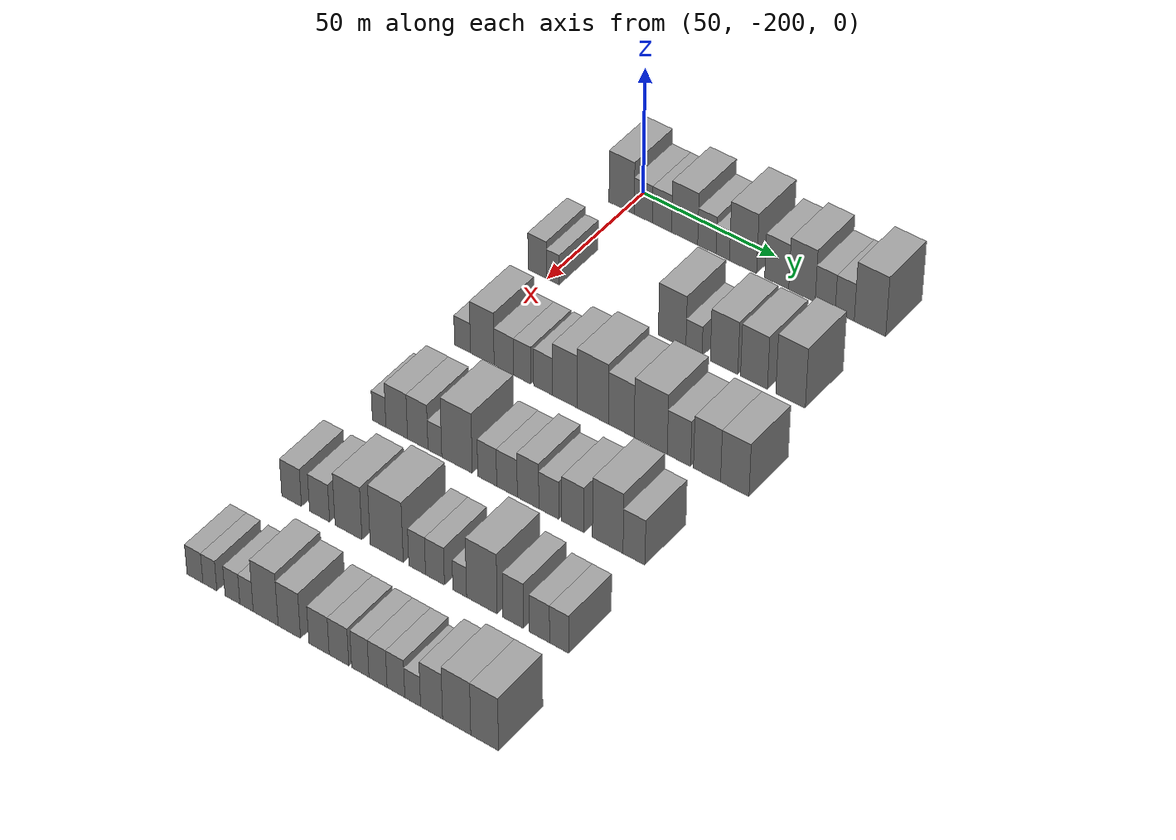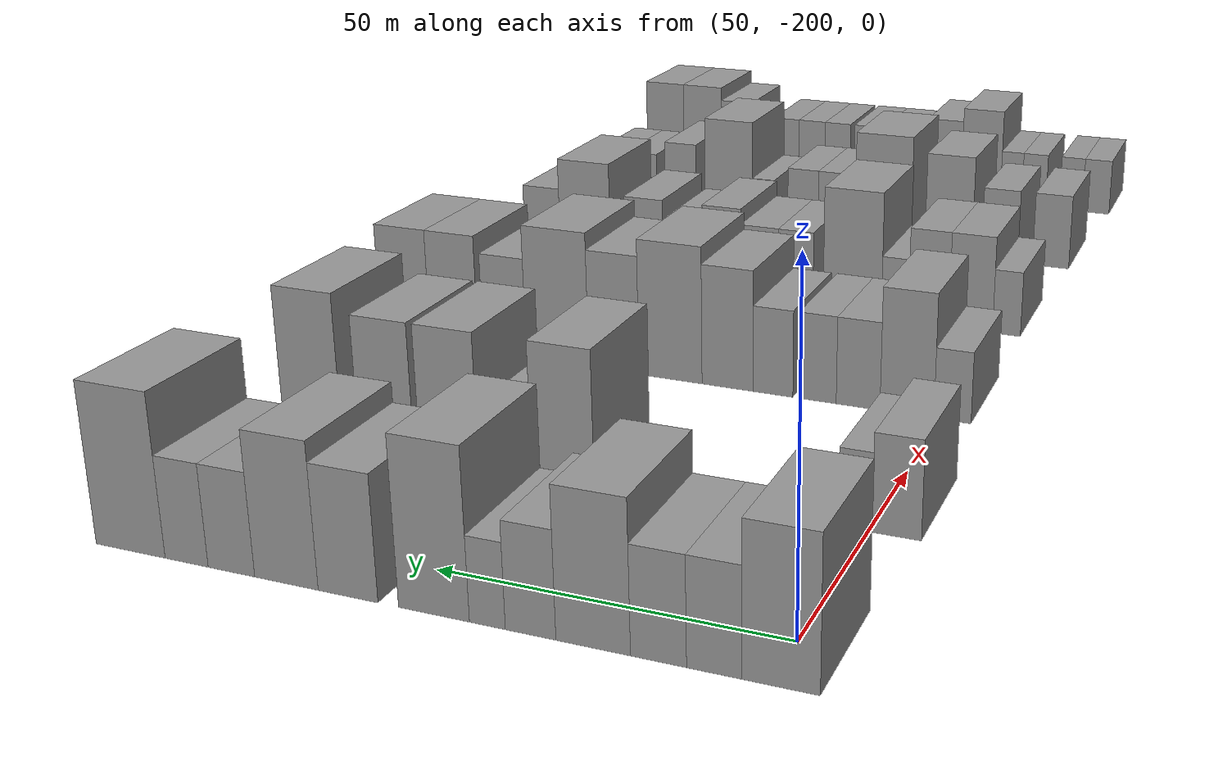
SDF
<sdf version="1.6">
 <world name="default">
  <model name="building_50">
   <static>1</static>
   <pose>50.0000 -201.2752 0 0.000000 0.000000 0.000000</pose>
   <link name="link">
    <pose>0 0 10.50 0 0 0</pose>
    <collision name="collision"><geometry><box><size>20.0000 9.6597 21.0000</size></box></geometry></collision>
    <visual name="visual">
     <cast_shadows>0</cast_shadows>
     <geometry><box><size>20.0000 9.6597 21.0000</size></box></geometry>
     <material>
      <script>
       <uri>model://grey_wall/materials/scripts</uri>
       <uri>model://grey_wall/materials/textures</uri>
       <name>vrc/grey_wall</name>
      </script>
     </material>
    </visual>
   </link>
  </model>
  <model name="building_51">
   <static>1</static>
   <pose>50.0000 -192.9699 0 0.000000 0.000000 0.000000</pose>
   <link name="link">
    <pose>0 0 7.50 0 0 0</pose>
    <collision name="collision"><geometry><box><size>20.0000 6.9508 15.0000</size></box></geometry></collision>
    <visual name="visual">
     <cast_shadows>0</cast_shadows>
     <geometry><box><size>20.0000 6.9508 15.0000</size></box></geometry>
     <material>
      <script>
       <uri>model://grey_wall/materials/scripts</uri>
       <uri>model://grey_wall/materials/textures</uri>
       <name>vrc/grey_wall</name>
      </script>
     </material>
    </visual>
   </link>
  </model>
  <model name="building_52">
   <static>1</static>
   <pose>50.0000 -185.8739 0 0.000000 0.000000 0.000000</pose>
   <link name="link">
    <pose>0 0 7.50 0 0 0</pose>
    <collision name="collision"><geometry><box><size>20.0000 7.2413 15.0000</size></box></geometry></collision>
    <visual name="visual">
     <cast_shadows>0</cast_shadows>
     <geometry><box><size>20.0000 7.2413 15.0000</size></box></geometry>
     <material>
      <script>
       <uri>model://grey_wall/materials/scripts</uri>
       <uri>model://grey_wall/materials/textures</uri>
       <name>vrc/grey_wall</name>
      </script>
     </material>
    </visual>
   </link>
  </model>
  <model name="building_53">
   <static>1</static>
   <pose>50.0000 -177.2964 0 0.000000 0.000000 0.000000</pose>
   <link name="link">
    <pose>0 0 10.50 0 0 0</pose>
    <collision name="collision"><geometry><box><size>20.0000 9.9137 21.0000</size></box></geometry></collision>
    <visual name="visual">
     <cast_shadows>0</cast_shadows>
     <geometry><box><size>20.0000 9.9137 21.0000</size></box></geometry>
     <material>
      <script>
       <uri>model://grey_wall/materials/scripts</uri>
       <uri>model://grey_wall/materials/textures</uri>
       <name>vrc/grey_wall</name>
      </script>
     </material>
    </visual>
   </link>
  </model>
  <model name="building_54">
   <static>1</static>
   <pose>50.0000 -168.8878 0 0.000000 0.000000 0.000000</pose>
   <link name="link">
    <pose>0 0 7.50 0 0 0</pose>
    <collision name="collision"><geometry><box><size>20.0000 6.9035 15.0000</size></box></geometry></collision>
    <visual name="visual">
     <cast_shadows>0</cast_shadows>
     <geometry><box><size>20.0000 6.9035 15.0000</size></box></geometry>
     <material>
      <script>
       <uri>model://grey_wall/materials/scripts</uri>
       <uri>model://grey_wall/materials/textures</uri>
       <name>vrc/grey_wall</name>
      </script>
     </material>
    </visual>
   </link>
  </model>
  <model name="building_55">
   <static>1</static>
   <pose>50.0000 -162.9367 0 0.000000 0.000000 0.000000</pose>
   <link name="link">
    <pose>0 0 6.00 0 0 0</pose>
    <collision name="collision"><geometry><box><size>20.0000 4.9988 12.0000</size></box></geometry></collision>
    <visual name="visual">
     <cast_shadows>0</cast_shadows>
     <geometry><box><size>20.0000 4.9988 12.0000</size></box></geometry>
     <material>
      <script>
       <uri>model://grey_wall/materials/scripts</uri>
       <uri>model://grey_wall/materials/textures</uri>
       <name>vrc/grey_wall</name>
      </script>
     </material>
    </visual>
   </link>
  </model>
  <model name="building_56">
   <static>1</static>
   <pose>50.0000 -155.3822 0 0.000000 0.000000 0.000000</pose>
   <link name="link">
    <pose>0 0 12.00 0 0 0</pose>
    <collision name="collision"><geometry><box><size>20.0000 10.1102 24.0000</size></box></geometry></collision>
    <visual name="visual">
     <cast_shadows>0</cast_shadows>
     <geometry><box><size>20.0000 10.1102 24.0000</size></box></geometry>
     <material>
      <script>
       <uri>model://grey_wall/materials/scripts</uri>
       <uri>model://grey_wall/materials/textures</uri>
       <name>vrc/grey_wall</name>
      </script>
     </material>
    </visual>
   </link>
  </model>
  <model name="building_57">
   <static>1</static>
   <pose>50.0000 -142.8923 0 0.000000 0.000000 0.000000</pose>
   <link name="link">
    <pose>0 0 9.00 0 0 0</pose>
    <collision name="collision"><geometry><box><size>20.0000 8.8695 18.0000</size></box></geometry></collision>
    <visual name="visual">
     <cast_shadows>0</cast_shadows>
     <geometry><box><size>20.0000 8.8695 18.0000</size></box></geometry>
     <material>
      <script>
       <uri>model://grey_wall/materials/scripts</uri>
       <uri>model://grey_wall/materials/textures</uri>
       <name>vrc/grey_wall</name>
      </script>
     </material>
    </visual>
   </link>
  </model>
  <model name="building_58">
   <static>1</static>
   <pose>50.0000 -133.6059 0 0.000000 0.000000 0.000000</pose>
   <link name="link">
    <pose>0 0 10.50 0 0 0</pose>
    <collision name="collision"><geometry><box><size>20.0000 9.7034 21.0000</size></box></geometry></collision>
    <visual name="visual">
     <cast_shadows>0</cast_shadows>
     <geometry><box><size>20.0000 9.7034 21.0000</size></box></geometry>
     <material>
      <script>
       <uri>model://grey_wall/materials/scripts</uri>
       <uri>model://grey_wall/materials/textures</uri>
       <name>vrc/grey_wall</name>
      </script>
     </material>
    </visual>
   </link>
  </model>
  <model name="building_59">
   <static>1</static>
   <pose>50.0000 -125.1052 0 0.000000 0.000000 0.000000</pose>
   <link name="link">
    <pose>0 0 7.50 0 0 0</pose>
    <collision name="collision"><geometry><box><size>20.0000 7.2979 15.0000</size></box></geometry></collision>
    <visual name="visual">
     <cast_shadows>0</cast_shadows>
     <geometry><box><size>20.0000 7.2979 15.0000</size></box></geometry>
     <material>
      <script>
       <uri>model://grey_wall/materials/scripts</uri>
       <uri>model://grey_wall/materials/textures</uri>
       <name>vrc/grey_wall</name>
      </script>
     </material>
    </visual>
   </link>
  </model>
  <model name="building_60">
   <static>1</static>
   <pose>50.0000 -118.0099 0 0.000000 0.000000 0.000000</pose>
   <link name="link">
    <pose>0 0 7.50 0 0 0</pose>
    <collision name="collision"><geometry><box><size>20.0000 6.8928 15.0000</size></box></geometry></collision>
    <visual name="visual">
     <cast_shadows>0</cast_shadows>
     <geometry><box><size>20.0000 6.8928 15.0000</size></box></geometry>
     <material>
      <script>
       <uri>model://grey_wall/materials/scripts</uri>
       <uri>model://grey_wall/materials/textures</uri>
       <name>vrc/grey_wall</name>
      </script>
     </material>
    </visual>
   </link>
  </model>
  <model name="building_61">
   <static>1</static>
   <pose>50.0000 -108.9009 0 0.000000 0.000000 0.000000</pose>
   <link name="link">
    <pose>0 0 12.00 0 0 0</pose>
    <collision name="collision"><geometry><box><size>20.0000 11.3253 24.0000</size></box></geometry></collision>
    <visual name="visual">
     <cast_shadows>0</cast_shadows>
     <geometry><box><size>20.0000 11.3253 24.0000</size></box></geometry>
     <material>
      <script>
       <uri>model://grey_wall/materials/scripts</uri>
       <uri>model://grey_wall/materials/textures</uri>
       <name>vrc/grey_wall</name>
      </script>
     </material>
    </visual>
   </link>
  </model>
  <model name="building_176">
   <static>1</static>
   <pose>90.0000 -203.9301 0 0.000000 0.000000 0.000000</pose>
   <link name="link">
    <pose>0 0 7.50 0 0 0</pose>
    <collision name="collision"><geometry><box><size>20.0000 6.9840 15.0000</size></box></geometry></collision>
    <visual name="visual">
     <cast_shadows>0</cast_shadows>
     <geometry><box><size>20.0000 6.9840 15.0000</size></box></geometry>
     <material>
      <script>
       <uri>model://grey_wall/materials/scripts</uri>
       <uri>model://grey_wall/materials/textures</uri>
       <name>vrc/grey_wall</name>
      </script>
     </material>
    </visual>
   </link>
  </model>
  <model name="building_177">
   <static>1</static>
   <pose>90.0000 -198.0077 0 0.000000 0.000000 0.000000</pose>
   <link name="link">
    <pose>0 0 6.00 0 0 0</pose>
    <collision name="collision"><geometry><box><size>20.0000 4.8608 12.0000</size></box></geometry></collision>
    <visual name="visual">
     <cast_shadows>0</cast_shadows>
     <geometry><box><size>20.0000 4.8608 12.0000</size></box></geometry>
     <material>
      <script>
       <uri>model://grey_wall/materials/scripts</uri>
       <uri>model://grey_wall/materials/textures</uri>
       <name>vrc/grey_wall</name>
      </script>
     </material>
    </visual>
   </link>
  </model>
  <model name="building_178">
   <static>1</static>
   <pose>90.0000 -153.4004 0 0.000000 0.000000 0.000000</pose>
   <link name="link">
    <pose>0 0 10.50 0 0 0</pose>
    <collision name="collision"><geometry><box><size>20.0000 10.1179 21.0000</size></box></geometry></collision>
    <visual name="visual">
     <cast_shadows>0</cast_shadows>
     <geometry><box><size>20.0000 10.1179 21.0000</size></box></geometry>
     <material>
      <script>
       <uri>model://grey_wall/materials/scripts</uri>
       <uri>model://grey_wall/materials/textures</uri>
       <name>vrc/grey_wall</name>
      </script>
     </material>
    </visual>
   </link>
  </model>
  <model name="building_179">
   <static>1</static>
   <pose>90.0000 -145.3824 0 0.000000 0.000000 0.000000</pose>
   <link name="link">
    <pose>0 0 6.00 0 0 0</pose>
    <collision name="collision"><geometry><box><size>20.0000 5.9182 12.0000</size></box></geometry></collision>
    <visual name="visual">
     <cast_shadows>0</cast_shadows>
     <geometry><box><size>20.0000 5.9182 12.0000</size></box></geometry>
     <material>
      <script>
       <uri>model://grey_wall/materials/scripts</uri>
       <uri>model://grey_wall/materials/textures</uri>
       <name>vrc/grey_wall</name>
      </script>
     </material>
    </visual>
   </link>
  </model>
  <model name="building_180">
   <static>1</static>
   <pose>90.0000 -134.4233 0 0.000000 0.000000 0.000000</pose>
   <link name="link">
    <pose>0 0 10.50 0 0 0</pose>
    <collision name="collision"><geometry><box><size>20.0000 10.0000 21.0000</size></box></geometry></collision>
    <visual name="visual">
     <cast_shadows>0</cast_shadows>
     <geometry><box><size>20.0000 10.0000 21.0000</size></box></geometry>
     <material>
      <script>
       <uri>model://grey_wall/materials/scripts</uri>
       <uri>model://grey_wall/materials/textures</uri>
       <name>vrc/grey_wall</name>
      </script>
     </material>
    </visual>
   </link>
  </model>
  <model name="building_181">
   <static>1</static>
   <pose>90.0000 -123.5809 0 0.000000 0.000000 0.000000</pose>
   <link name="link">
    <pose>0 0 10.50 0 0 0</pose>
    <collision name="collision"><geometry><box><size>20.0000 9.6848 21.0000</size></box></geometry></collision>
    <visual name="visual">
     <cast_shadows>0</cast_shadows>
     <geometry><box><size>20.0000 9.6848 21.0000</size></box></geometry>
     <material>
      <script>
       <uri>model://grey_wall/materials/scripts</uri>
       <uri>model://grey_wall/materials/textures</uri>
       <name>vrc/grey_wall</name>
      </script>
     </material>
    </visual>
   </link>
  </model>
  <model name="building_182">
   <static>1</static>
   <pose>90.0000 -110.4600 0 0.000000 0.000000 0.000000</pose>
   <link name="link">
    <pose>0 0 12.00 0 0 0</pose>
    <collision name="collision"><geometry><box><size>20.0000 10.5569 24.0000</size></box></geometry></collision>
    <visual name="visual">
     <cast_shadows>0</cast_shadows>
     <geometry><box><size>20.0000 10.5569 24.0000</size></box></geometry>
     <material>
      <script>
       <uri>model://grey_wall/materials/scripts</uri>
       <uri>model://grey_wall/materials/textures</uri>
       <name>vrc/grey_wall</name>
      </script>
     </material>
    </visual>
   </link>
  </model>
  <model name="building_310">
   <static>1</static>
   <pose>130.0000 -201.8262 0 0.000000 0.000000 0.000000</pose>
   <link name="link">
    <pose>0 0 6.00 0 0 0</pose>
    <collision name="collision"><geometry><box><size>20.0000 5.9999 12.0000</size></box></geometry></collision>
    <visual name="visual">
     <cast_shadows>0</cast_shadows>
     <geometry><box><size>20.0000 5.9999 12.0000</size></box></geometry>
     <material>
      <script>
       <uri>model://grey_wall/materials/scripts</uri>
       <uri>model://grey_wall/materials/textures</uri>
       <name>vrc/grey_wall</name>
      </script>
     </material>
    </visual>
   </link>
  </model>
  <model name="building_311">
   <static>1</static>
   <pose>130.0000 -194.3865 0 0.000000 0.000000 0.000000</pose>
   <link name="link">
    <pose>0 0 10.50 0 0 0</pose>
    <collision name="collision"><geometry><box><size>20.0000 8.8794 21.0000</size></box></geometry></collision>
    <visual name="visual">
     <cast_shadows>0</cast_shadows>
     <geometry><box><size>20.0000 8.8794 21.0000</size></box></geometry>
     <material>
      <script>
       <uri>model://grey_wall/materials/scripts</uri>
       <uri>model://grey_wall/materials/textures</uri>
       <name>vrc/grey_wall</name>
      </script>
     </material>
    </visual>
   </link>
  </model>
  <model name="building_312">
   <static>1</static>
   <pose>130.0000 -186.2729 0 0.000000 0.000000 0.000000</pose>
   <link name="link">
    <pose>0 0 7.50 0 0 0</pose>
    <collision name="collision"><geometry><box><size>20.0000 7.3479 15.0000</size></box></geometry></collision>
    <visual name="visual">
     <cast_shadows>0</cast_shadows>
     <geometry><box><size>20.0000 7.3479 15.0000</size></box></geometry>
     <material>
      <script>
       <uri>model://grey_wall/materials/scripts</uri>
       <uri>model://grey_wall/materials/textures</uri>
       <name>vrc/grey_wall</name>
      </script>
     </material>
    </visual>
   </link>
  </model>
  <model name="building_313">
   <static>1</static>
   <pose>130.0000 -179.3997 0 0.000000 0.000000 0.000000</pose>
   <link name="link">
    <pose>0 0 7.50 0 0 0</pose>
    <collision name="collision"><geometry><box><size>20.0000 6.3985 15.0000</size></box></geometry></collision>
    <visual name="visual">
     <cast_shadows>0</cast_shadows>
     <geometry><box><size>20.0000 6.3985 15.0000</size></box></geometry>
     <material>
      <script>
       <uri>model://grey_wall/materials/scripts</uri>
       <uri>model://grey_wall/materials/textures</uri>
       <name>vrc/grey_wall</name>
      </script>
     </material>
    </visual>
   </link>
  </model>
  <model name="building_314">
   <static>1</static>
   <pose>130.0000 -171.7525 0 0.000000 0.000000 0.000000</pose>
   <link name="link">
    <pose>0 0 7.50 0 0 0</pose>
    <collision name="collision"><geometry><box><size>20.0000 6.8959 15.0000</size></box></geometry></collision>
    <visual name="visual">
     <cast_shadows>0</cast_shadows>
     <geometry><box><size>20.0000 6.8959 15.0000</size></box></geometry>
     <material>
      <script>
       <uri>model://grey_wall/materials/scripts</uri>
       <uri>model://grey_wall/materials/textures</uri>
       <name>vrc/grey_wall</name>
      </script>
     </material>
    </visual>
   </link>
  </model>
  <model name="building_315">
   <static>1</static>
   <pose>130.0000 -163.7702 0 0.000000 0.000000 0.000000</pose>
   <link name="link">
    <pose>0 0 10.50 0 0 0</pose>
    <collision name="collision"><geometry><box><size>20.0000 9.0687 21.0000</size></box></geometry></collision>
    <visual name="visual">
     <cast_shadows>0</cast_shadows>
     <geometry><box><size>20.0000 9.0687 21.0000</size></box></geometry>
     <material>
      <script>
       <uri>model://grey_wall/materials/scripts</uri>
       <uri>model://grey_wall/materials/textures</uri>
       <name>vrc/grey_wall</name>
      </script>
     </material>
    </visual>
   </link>
  </model>
  <model name="building_316">
   <static>1</static>
   <pose>130.0000 -153.5148 0 0.000000 0.000000 0.000000</pose>
   <link name="link">
    <pose>0 0 12.00 0 0 0</pose>
    <collision name="collision"><geometry><box><size>20.0000 11.4421 24.0000</size></box></geometry></collision>
    <visual name="visual">
     <cast_shadows>0</cast_shadows>
     <geometry><box><size>20.0000 11.4421 24.0000</size></box></geometry>
     <material>
      <script>
       <uri>model://grey_wall/materials/scripts</uri>
       <uri>model://grey_wall/materials/textures</uri>
       <name>vrc/grey_wall</name>
      </script>
     </material>
    </visual>
   </link>
  </model>
  <model name="building_317">
   <static>1</static>
   <pose>130.0000 -143.1192 0 0.000000 0.000000 0.000000</pose>
   <link name="link">
    <pose>0 0 10.50 0 0 0</pose>
    <collision name="collision"><geometry><box><size>20.0000 9.3489 21.0000</size></box></geometry></collision>
    <visual name="visual">
     <cast_shadows>0</cast_shadows>
     <geometry><box><size>20.0000 9.3489 21.0000</size></box></geometry>
     <material>
      <script>
       <uri>model://grey_wall/materials/scripts</uri>
       <uri>model://grey_wall/materials/textures</uri>
       <name>vrc/grey_wall</name>
      </script>
     </material>
    </visual>
   </link>
  </model>
  <model name="building_318">
   <static>1</static>
   <pose>130.0000 -132.4932 0 0.000000 0.000000 0.000000</pose>
   <link name="link">
    <pose>0 0 12.00 0 0 0</pose>
    <collision name="collision"><geometry><box><size>20.0000 11.9032 24.0000</size></box></geometry></collision>
    <visual name="visual">
     <cast_shadows>0</cast_shadows>
     <geometry><box><size>20.0000 11.9032 24.0000</size></box></geometry>
     <material>
      <script>
       <uri>model://grey_wall/materials/scripts</uri>
       <uri>model://grey_wall/materials/textures</uri>
       <name>vrc/grey_wall</name>
      </script>
     </material>
    </visual>
   </link>
  </model>
  <model name="building_319">
   <static>1</static>
   <pose>130.0000 -122.3694 0 0.000000 0.000000 0.000000</pose>
   <link name="link">
    <pose>0 0 9.00 0 0 0</pose>
    <collision name="collision"><geometry><box><size>20.0000 8.3444 18.0000</size></box></geometry></collision>
    <visual name="visual">
     <cast_shadows>0</cast_shadows>
     <geometry><box><size>20.0000 8.3444 18.0000</size></box></geometry>
     <material>
      <script>
       <uri>model://grey_wall/materials/scripts</uri>
       <uri>model://grey_wall/materials/textures</uri>
       <name>vrc/grey_wall</name>
      </script>
     </material>
    </visual>
   </link>
  </model>
  <model name="building_320">
   <static>1</static>
   <pose>130.0000 -112.4009 0 0.000000 0.000000 0.000000</pose>
   <link name="link">
    <pose>0 0 10.50 0 0 0</pose>
    <collision name="collision"><geometry><box><size>20.0000 9.5924 21.0000</size></box></geometry></collision>
    <visual name="visual">
     <cast_shadows>0</cast_shadows>
     <geometry><box><size>20.0000 9.5924 21.0000</size></box></geometry>
     <material>
      <script>
       <uri>model://grey_wall/materials/scripts</uri>
       <uri>model://grey_wall/materials/textures</uri>
       <name>vrc/grey_wall</name>
      </script>
     </material>
    </visual>
   </link>
  </model>
  <model name="building_321">
   <static>1</static>
   <pose>130.0000 -102.5970 0 0.000000 0.000000 0.000000</pose>
   <link name="link">
    <pose>0 0 10.50 0 0 0</pose>
    <collision name="collision"><geometry><box><size>20.0000 10.0156 21.0000</size></box></geometry></collision>
    <visual name="visual">
     <cast_shadows>0</cast_shadows>
     <geometry><box><size>20.0000 10.0156 21.0000</size></box></geometry>
     <material>
      <script>
       <uri>model://grey_wall/materials/scripts</uri>
       <uri>model://grey_wall/materials/textures</uri>
       <name>vrc/grey_wall</name>
      </script>
     </material>
    </visual>
   </link>
  </model>
  <model name="building_449">
   <static>1</static>
   <pose>170.0000 -201.8230 0 0.000000 0.000000 0.000000</pose>
   <link name="link">
    <pose>0 0 6.00 0 0 0</pose>
    <collision name="collision"><geometry><box><size>20.0000 5.0629 12.0000</size></box></geometry></collision>
    <visual name="visual">
     <cast_shadows>0</cast_shadows>
     <geometry><box><size>20.0000 5.0629 12.0000</size></box></geometry>
     <material>
      <script>
       <uri>model://grey_wall/materials/scripts</uri>
       <uri>model://grey_wall/materials/textures</uri>
       <name>vrc/grey_wall</name>
      </script>
     </material>
    </visual>
   </link>
  </model>
  <model name="building_450">
   <static>1</static>
   <pose>170.0000 -195.2607 0 0.000000 0.000000 0.000000</pose>
   <link name="link">
    <pose>0 0 9.00 0 0 0</pose>
    <collision name="collision"><geometry><box><size>20.0000 8.0618 18.0000</size></box></geometry></collision>
    <visual name="visual">
     <cast_shadows>0</cast_shadows>
     <geometry><box><size>20.0000 8.0618 18.0000</size></box></geometry>
     <material>
      <script>
       <uri>model://grey_wall/materials/scripts</uri>
       <uri>model://grey_wall/materials/textures</uri>
       <name>vrc/grey_wall</name>
      </script>
     </material>
    </visual>
   </link>
  </model>
  <model name="building_451">
   <static>1</static>
   <pose>170.0000 -187.4420 0 0.000000 0.000000 0.000000</pose>
   <link name="link">
    <pose>0 0 9.00 0 0 0</pose>
    <collision name="collision"><geometry><box><size>20.0000 7.5755 18.0000</size></box></geometry></collision>
    <visual name="visual">
     <cast_shadows>0</cast_shadows>
     <geometry><box><size>20.0000 7.5755 18.0000</size></box></geometry>
     <material>
      <script>
       <uri>model://grey_wall/materials/scripts</uri>
       <uri>model://grey_wall/materials/textures</uri>
       <name>vrc/grey_wall</name>
      </script>
     </material>
    </visual>
   </link>
  </model>
  <model name="building_452">
   <static>1</static>
   <pose>170.0000 -181.1054 0 0.000000 0.000000 0.000000</pose>
   <link name="link">
    <pose>0 0 6.00 0 0 0</pose>
    <collision name="collision"><geometry><box><size>20.0000 5.0977 12.0000</size></box></geometry></collision>
    <visual name="visual">
     <cast_shadows>0</cast_shadows>
     <geometry><box><size>20.0000 5.0977 12.0000</size></box></geometry>
     <material>
      <script>
       <uri>model://grey_wall/materials/scripts</uri>
       <uri>model://grey_wall/materials/textures</uri>
       <name>vrc/grey_wall</name>
      </script>
     </material>
    </visual>
   </link>
  </model>
  <model name="building_453">
   <static>1</static>
   <pose>170.0000 -172.9521 0 0.000000 0.000000 0.000000</pose>
   <link name="link">
    <pose>0 0 12.00 0 0 0</pose>
    <collision name="collision"><geometry><box><size>20.0000 11.2089 24.0000</size></box></geometry></collision>
    <visual name="visual">
     <cast_shadows>0</cast_shadows>
     <geometry><box><size>20.0000 11.2089 24.0000</size></box></geometry>
     <material>
      <script>
       <uri>model://grey_wall/materials/scripts</uri>
       <uri>model://grey_wall/materials/textures</uri>
       <name>vrc/grey_wall</name>
      </script>
     </material>
    </visual>
   </link>
  </model>
  <model name="building_454">
   <static>1</static>
   <pose>170.0000 -161.9113 0 0.000000 0.000000 0.000000</pose>
   <link name="link">
    <pose>0 0 7.50 0 0 0</pose>
    <collision name="collision"><geometry><box><size>20.0000 6.8727 15.0000</size></box></geometry></collision>
    <visual name="visual">
     <cast_shadows>0</cast_shadows>
     <geometry><box><size>20.0000 6.8727 15.0000</size></box></geometry>
     <material>
      <script>
       <uri>model://grey_wall/materials/scripts</uri>
       <uri>model://grey_wall/materials/textures</uri>
       <name>vrc/grey_wall</name>
      </script>
     </material>
    </visual>
   </link>
  </model>
  <model name="building_455">
   <static>1</static>
   <pose>170.0000 -154.7387 0 0.000000 0.000000 0.000000</pose>
   <link name="link">
    <pose>0 0 7.50 0 0 0</pose>
    <collision name="collision"><geometry><box><size>20.0000 7.4725 15.0000</size></box></geometry></collision>
    <visual name="visual">
     <cast_shadows>0</cast_shadows>
     <geometry><box><size>20.0000 7.4725 15.0000</size></box></geometry>
     <material>
      <script>
       <uri>model://grey_wall/materials/scripts</uri>
       <uri>model://grey_wall/materials/textures</uri>
       <name>vrc/grey_wall</name>
      </script>
     </material>
    </visual>
   </link>
  </model>
  <model name="building_456">
   <static>1</static>
   <pose>170.0000 -147.1284 0 0.000000 0.000000 0.000000</pose>
   <link name="link">
    <pose>0 0 9.00 0 0 0</pose>
    <collision name="collision"><geometry><box><size>20.0000 7.7482 18.0000</size></box></geometry></collision>
    <visual name="visual">
     <cast_shadows>0</cast_shadows>
     <geometry><box><size>20.0000 7.7482 18.0000</size></box></geometry>
     <material>
      <script>
       <uri>model://grey_wall/materials/scripts</uri>
       <uri>model://grey_wall/materials/textures</uri>
       <name>vrc/grey_wall</name>
      </script>
     </material>
    </visual>
   </link>
  </model>
  <model name="building_457">
   <static>1</static>
   <pose>170.0000 -139.6732 0 0.000000 0.000000 0.000000</pose>
   <link name="link">
    <pose>0 0 7.50 0 0 0</pose>
    <collision name="collision"><geometry><box><size>20.0000 7.1622 15.0000</size></box></geometry></collision>
    <visual name="visual">
     <cast_shadows>0</cast_shadows>
     <geometry><box><size>20.0000 7.1622 15.0000</size></box></geometry>
     <material>
      <script>
       <uri>model://grey_wall/materials/scripts</uri>
       <uri>model://grey_wall/materials/textures</uri>
       <name>vrc/grey_wall</name>
      </script>
     </material>
    </visual>
   </link>
  </model>
  <model name="building_458">
   <static>1</static>
   <pose>170.0000 -131.1093 0 0.000000 0.000000 0.000000</pose>
   <link name="link">
    <pose>0 0 9.00 0 0 0</pose>
    <collision name="collision"><geometry><box><size>20.0000 7.9656 18.0000</size></box></geometry></collision>
    <visual name="visual">
     <cast_shadows>0</cast_shadows>
     <geometry><box><size>20.0000 7.9656 18.0000</size></box></geometry>
     <material>
      <script>
       <uri>model://grey_wall/materials/scripts</uri>
       <uri>model://grey_wall/materials/textures</uri>
       <name>vrc/grey_wall</name>
      </script>
     </material>
    </visual>
   </link>
  </model>
  <model name="building_459">
   <static>1</static>
   <pose>170.0000 -118.7372 0 0.000000 0.000000 0.000000</pose>
   <link name="link">
    <pose>0 0 12.00 0 0 0</pose>
    <collision name="collision"><geometry><box><size>20.0000 10.7786 24.0000</size></box></geometry></collision>
    <visual name="visual">
     <cast_shadows>0</cast_shadows>
     <geometry><box><size>20.0000 10.7786 24.0000</size></box></geometry>
     <material>
      <script>
       <uri>model://grey_wall/materials/scripts</uri>
       <uri>model://grey_wall/materials/textures</uri>
       <name>vrc/grey_wall</name>
      </script>
     </material>
    </visual>
   </link>
  </model>
  <model name="building_460">
   <static>1</static>
   <pose>170.0000 -109.4995 0 0.000000 0.000000 0.000000</pose>
   <link name="link">
    <pose>0 0 9.00 0 0 0</pose>
    <collision name="collision"><geometry><box><size>20.0000 7.6968 18.0000</size></box></geometry></collision>
    <visual name="visual">
     <cast_shadows>0</cast_shadows>
     <geometry><box><size>20.0000 7.6968 18.0000</size></box></geometry>
     <material>
      <script>
       <uri>model://grey_wall/materials/scripts</uri>
       <uri>model://grey_wall/materials/textures</uri>
       <name>vrc/grey_wall</name>
      </script>
     </material>
    </visual>
   </link>
  </model>
  <model name="building_594">
   <static>1</static>
   <pose>210.0000 -202.1184 0 0.000000 0.000000 0.000000</pose>
   <link name="link">
    <pose>0 0 7.50 0 0 0</pose>
    <collision name="collision"><geometry><box><size>20.0000 7.3005 15.0000</size></box></geometry></collision>
    <visual name="visual">
     <cast_shadows>0</cast_shadows>
     <geometry><box><size>20.0000 7.3005 15.0000</size></box></geometry>
     <material>
      <script>
       <uri>model://grey_wall/materials/scripts</uri>
       <uri>model://grey_wall/materials/textures</uri>
       <name>vrc/grey_wall</name>
      </script>
     </material>
    </visual>
   </link>
  </model>
  <model name="building_595">
   <static>1</static>
   <pose>210.0000 -191.7721 0 0.000000 0.000000 0.000000</pose>
   <link name="link">
    <pose>0 0 7.50 0 0 0</pose>
    <collision name="collision"><geometry><box><size>20.0000 7.3922 15.0000</size></box></geometry></collision>
    <visual name="visual">
     <cast_shadows>0</cast_shadows>
     <geometry><box><size>20.0000 7.3922 15.0000</size></box></geometry>
     <material>
      <script>
       <uri>model://grey_wall/materials/scripts</uri>
       <uri>model://grey_wall/materials/textures</uri>
       <name>vrc/grey_wall</name>
      </script>
     </material>
    </visual>
   </link>
  </model>
  <model name="building_596">
   <static>1</static>
   <pose>210.0000 -181.1423 0 0.000000 0.000000 0.000000</pose>
   <link name="link">
    <pose>0 0 10.50 0 0 0</pose>
    <collision name="collision"><geometry><box><size>20.0000 9.8674 21.0000</size></box></geometry></collision>
    <visual name="visual">
     <cast_shadows>0</cast_shadows>
     <geometry><box><size>20.0000 9.8674 21.0000</size></box></geometry>
     <material>
      <script>
       <uri>model://grey_wall/materials/scripts</uri>
       <uri>model://grey_wall/materials/textures</uri>
       <name>vrc/grey_wall</name>
      </script>
     </material>
    </visual>
   </link>
  </model>
  <model name="building_597">
   <static>1</static>
   <pose>210.0000 -167.2183 0 0.000000 0.000000 0.000000</pose>
   <link name="link">
    <pose>0 0 12.00 0 0 0</pose>
    <collision name="collision"><geometry><box><size>20.0000 11.9806 24.0000</size></box></geometry></collision>
    <visual name="visual">
     <cast_shadows>0</cast_shadows>
     <geometry><box><size>20.0000 11.9806 24.0000</size></box></geometry>
     <material>
      <script>
       <uri>model://grey_wall/materials/scripts</uri>
       <uri>model://grey_wall/materials/textures</uri>
       <name>vrc/grey_wall</name>
      </script>
     </material>
    </visual>
   </link>
  </model>
  <model name="building_598">
   <static>1</static>
   <pose>210.0000 -156.2194 0 0.000000 0.000000 0.000000</pose>
   <link name="link">
    <pose>0 0 7.50 0 0 0</pose>
    <collision name="collision"><geometry><box><size>20.0000 6.0172 15.0000</size></box></geometry></collision>
    <visual name="visual">
     <cast_shadows>0</cast_shadows>
     <geometry><box><size>20.0000 6.0172 15.0000</size></box></geometry>
     <material>
      <script>
       <uri>model://grey_wall/materials/scripts</uri>
       <uri>model://grey_wall/materials/textures</uri>
       <name>vrc/grey_wall</name>
      </script>
     </material>
    </visual>
   </link>
  </model>
  <model name="building_599">
   <static>1</static>
   <pose>210.0000 -149.8347 0 0.000000 0.000000 0.000000</pose>
   <link name="link">
    <pose>0 0 7.50 0 0 0</pose>
    <collision name="collision"><geometry><box><size>20.0000 6.7522 15.0000</size></box></geometry></collision>
    <visual name="visual">
     <cast_shadows>0</cast_shadows>
     <geometry><box><size>20.0000 6.7522 15.0000</size></box></geometry>
     <material>
      <script>
       <uri>model://grey_wall/materials/scripts</uri>
       <uri>model://grey_wall/materials/textures</uri>
       <name>vrc/grey_wall</name>
      </script>
     </material>
    </visual>
   </link>
  </model>
  <model name="building_600">
   <static>1</static>
   <pose>210.0000 -141.0162 0 0.000000 0.000000 0.000000</pose>
   <link name="link">
    <pose>0 0 6.00 0 0 0</pose>
    <collision name="collision"><geometry><box><size>20.0000 4.8847 12.0000</size></box></geometry></collision>
    <visual name="visual">
     <cast_shadows>0</cast_shadows>
     <geometry><box><size>20.0000 4.8847 12.0000</size></box></geometry>
     <material>
      <script>
       <uri>model://grey_wall/materials/scripts</uri>
       <uri>model://grey_wall/materials/textures</uri>
       <name>vrc/grey_wall</name>
      </script>
     </material>
    </visual>
   </link>
  </model>
  <model name="building_601">
   <static>1</static>
   <pose>210.0000 -133.1641 0 0.000000 0.000000 0.000000</pose>
   <link name="link">
    <pose>0 0 12.00 0 0 0</pose>
    <collision name="collision"><geometry><box><size>20.0000 10.8196 24.0000</size></box></geometry></collision>
    <visual name="visual">
     <cast_shadows>0</cast_shadows>
     <geometry><box><size>20.0000 10.8196 24.0000</size></box></geometry>
     <material>
      <script>
       <uri>model://grey_wall/materials/scripts</uri>
       <uri>model://grey_wall/materials/textures</uri>
       <name>vrc/grey_wall</name>
      </script>
     </material>
    </visual>
   </link>
  </model>
  <model name="building_602">
   <static>1</static>
   <pose>210.0000 -122.1366 0 0.000000 0.000000 0.000000</pose>
   <link name="link">
    <pose>0 0 9.00 0 0 0</pose>
    <collision name="collision"><geometry><box><size>20.0000 7.2354 18.0000</size></box></geometry></collision>
    <visual name="visual">
     <cast_shadows>0</cast_shadows>
     <geometry><box><size>20.0000 7.2354 18.0000</size></box></geometry>
     <material>
      <script>
       <uri>model://grey_wall/materials/scripts</uri>
       <uri>model://grey_wall/materials/textures</uri>
       <name>vrc/grey_wall</name>
      </script>
     </material>
    </visual>
   </link>
  </model>
  <model name="building_603">
   <static>1</static>
   <pose>210.0000 -113.0004 0 0.000000 0.000000 0.000000</pose>
   <link name="link">
    <pose>0 0 7.50 0 0 0</pose>
    <collision name="collision"><geometry><box><size>20.0000 7.0370 15.0000</size></box></geometry></collision>
    <visual name="visual">
     <cast_shadows>0</cast_shadows>
     <geometry><box><size>20.0000 7.0370 15.0000</size></box></geometry>
     <material>
      <script>
       <uri>model://grey_wall/materials/scripts</uri>
       <uri>model://grey_wall/materials/textures</uri>
       <name>vrc/grey_wall</name>
      </script>
     </material>
    </visual>
   </link>
  </model>
  <model name="building_604">
   <static>1</static>
   <pose>210.0000 -106.1474 0 0.000000 0.000000 0.000000</pose>
   <link name="link">
    <pose>0 0 7.50 0 0 0</pose>
    <collision name="collision"><geometry><box><size>20.0000 6.6692 15.0000</size></box></geometry></collision>
    <visual name="visual">
     <cast_shadows>0</cast_shadows>
     <geometry><box><size>20.0000 6.6692 15.0000</size></box></geometry>
     <material>
      <script>
       <uri>model://grey_wall/materials/scripts</uri>
       <uri>model://grey_wall/materials/textures</uri>
       <name>vrc/grey_wall</name>
      </script>
     </material>
    </visual>
   </link>
  </model>
  <model name="building_733">
   <static>1</static>
   <pose>250.0000 -204.5061 0 0.000000 0.000000 0.000000</pose>
   <link name="link">
    <pose>0 0 6.00 0 0 0</pose>
    <collision name="collision"><geometry><box><size>20.0000 5.8522 12.0000</size></box></geometry></collision>
    <visual name="visual">
     <cast_shadows>0</cast_shadows>
     <geometry><box><size>20.0000 5.8522 12.0000</size></box></geometry>
     <material>
      <script>
       <uri>model://grey_wall/materials/scripts</uri>
       <uri>model://grey_wall/materials/textures</uri>
       <name>vrc/grey_wall</name>
      </script>
     </material>
    </visual>
   </link>
  </model>
  <model name="building_734">
   <static>1</static>
   <pose>250.0000 -199.0081 0 0.000000 0.000000 0.000000</pose>
   <link name="link">
    <pose>0 0 6.00 0 0 0</pose>
    <collision name="collision"><geometry><box><size>20.0000 5.1439 12.0000</size></box></geometry></collision>
    <visual name="visual">
     <cast_shadows>0</cast_shadows>
     <geometry><box><size>20.0000 5.1439 12.0000</size></box></geometry>
     <material>
      <script>
       <uri>model://grey_wall/materials/scripts</uri>
       <uri>model://grey_wall/materials/textures</uri>
       <name>vrc/grey_wall</name>
      </script>
     </material>
    </visual>
   </link>
  </model>
  <model name="building_735">
   <static>1</static>
   <pose>250.0000 -190.7227 0 0.000000 0.000000 0.000000</pose>
   <link name="link">
    <pose>0 0 6.00 0 0 0</pose>
    <collision name="collision"><geometry><box><size>20.0000 5.4269 12.0000</size></box></geometry></collision>
    <visual name="visual">
     <cast_shadows>0</cast_shadows>
     <geometry><box><size>20.0000 5.4269 12.0000</size></box></geometry>
     <material>
      <script>
       <uri>model://grey_wall/materials/scripts</uri>
       <uri>model://grey_wall/materials/textures</uri>
       <name>vrc/grey_wall</name>
      </script>
     </material>
    </visual>
   </link>
  </model>
  <model name="building_736">
   <static>1</static>
   <pose>250.0000 -185.5680 0 0.000000 0.000000 0.000000</pose>
   <link name="link">
    <pose>0 0 6.00 0 0 0</pose>
    <collision name="collision"><geometry><box><size>20.0000 4.8824 12.0000</size></box></geometry></collision>
    <visual name="visual">
     <cast_shadows>0</cast_shadows>
     <geometry><box><size>20.0000 4.8824 12.0000</size></box></geometry>
     <material>
      <script>
       <uri>model://grey_wall/materials/scripts</uri>
       <uri>model://grey_wall/materials/textures</uri>
       <name>vrc/grey_wall</name>
      </script>
     </material>
    </visual>
   </link>
  </model>
  <model name="building_737">
   <static>1</static>
   <pose>250.0000 -178.6114 0 0.000000 0.000000 0.000000</pose>
   <link name="link">
    <pose>0 0 10.50 0 0 0</pose>
    <collision name="collision"><geometry><box><size>20.0000 9.0307 21.0000</size></box></geometry></collision>
    <visual name="visual">
     <cast_shadows>0</cast_shadows>
     <geometry><box><size>20.0000 9.0307 21.0000</size></box></geometry>
     <material>
      <script>
       <uri>model://grey_wall/materials/scripts</uri>
       <uri>model://grey_wall/materials/textures</uri>
       <name>vrc/grey_wall</name>
      </script>
     </material>
    </visual>
   </link>
  </model>
  <model name="building_738">
   <static>1</static>
   <pose>250.0000 -170.0705 0 0.000000 0.000000 0.000000</pose>
   <link name="link">
    <pose>0 0 9.00 0 0 0</pose>
    <collision name="collision"><geometry><box><size>20.0000 8.0512 18.0000</size></box></geometry></collision>
    <visual name="visual">
     <cast_shadows>0</cast_shadows>
     <geometry><box><size>20.0000 8.0512 18.0000</size></box></geometry>
     <material>
      <script>
       <uri>model://grey_wall/materials/scripts</uri>
       <uri>model://grey_wall/materials/textures</uri>
       <name>vrc/grey_wall</name>
      </script>
     </material>
    </visual>
   </link>
  </model>
  <model name="building_739">
   <static>1</static>
   <pose>250.0000 -159.4151 0 0.000000 0.000000 0.000000</pose>
   <link name="link">
    <pose>0 0 7.50 0 0 0</pose>
    <collision name="collision"><geometry><box><size>20.0000 7.2597 15.0000</size></box></geometry></collision>
    <visual name="visual">
     <cast_shadows>0</cast_shadows>
     <geometry><box><size>20.0000 7.2597 15.0000</size></box></geometry>
     <material>
      <script>
       <uri>model://grey_wall/materials/scripts</uri>
       <uri>model://grey_wall/materials/textures</uri>
       <name>vrc/grey_wall</name>
      </script>
     </material>
    </visual>
   </link>
  </model>
  <model name="building_740">
   <static>1</static>
   <pose>250.0000 -152.2940 0 0.000000 0.000000 0.000000</pose>
   <link name="link">
    <pose>0 0 7.50 0 0 0</pose>
    <collision name="collision"><geometry><box><size>20.0000 6.9825 15.0000</size></box></geometry></collision>
    <visual name="visual">
     <cast_shadows>0</cast_shadows>
     <geometry><box><size>20.0000 6.9825 15.0000</size></box></geometry>
     <material>
      <script>
       <uri>model://grey_wall/materials/scripts</uri>
       <uri>model://grey_wall/materials/textures</uri>
       <name>vrc/grey_wall</name>
      </script>
     </material>
    </visual>
   </link>
  </model>
  <model name="building_741">
   <static>1</static>
   <pose>250.0000 -144.7501 0 0.000000 0.000000 0.000000</pose>
   <link name="link">
    <pose>0 0 7.50 0 0 0</pose>
    <collision name="collision"><geometry><box><size>20.0000 6.1053 15.0000</size></box></geometry></collision>
    <visual name="visual">
     <cast_shadows>0</cast_shadows>
     <geometry><box><size>20.0000 6.1053 15.0000</size></box></geometry>
     <material>
      <script>
       <uri>model://grey_wall/materials/scripts</uri>
       <uri>model://grey_wall/materials/textures</uri>
       <name>vrc/grey_wall</name>
      </script>
     </material>
    </visual>
   </link>
  </model>
  <model name="building_742">
   <static>1</static>
   <pose>250.0000 -138.5032 0 0.000000 0.000000 0.000000</pose>
   <link name="link">
    <pose>0 0 7.50 0 0 0</pose>
    <collision name="collision"><geometry><box><size>20.0000 6.3886 15.0000</size></box></geometry></collision>
    <visual name="visual">
     <cast_shadows>0</cast_shadows>
     <geometry><box><size>20.0000 6.3886 15.0000</size></box></geometry>
     <material>
      <script>
       <uri>model://grey_wall/materials/scripts</uri>
       <uri>model://grey_wall/materials/textures</uri>
       <name>vrc/grey_wall</name>
      </script>
     </material>
    </visual>
   </link>
  </model>
  <model name="building_743">
   <static>1</static>
   <pose>250.0000 -132.2073 0 0.000000 0.000000 0.000000</pose>
   <link name="link">
    <pose>0 0 7.50 0 0 0</pose>
    <collision name="collision"><geometry><box><size>20.0000 6.2031 15.0000</size></box></geometry></collision>
    <visual name="visual">
     <cast_shadows>0</cast_shadows>
     <geometry><box><size>20.0000 6.2031 15.0000</size></box></geometry>
     <material>
      <script>
       <uri>model://grey_wall/materials/scripts</uri>
       <uri>model://grey_wall/materials/textures</uri>
       <name>vrc/grey_wall</name>
      </script>
     </material>
    </visual>
   </link>
  </model>
  <model name="building_744">
   <static>1</static>
   <pose>250.0000 -126.3666 0 0.000000 0.000000 0.000000</pose>
   <link name="link">
    <pose>0 0 6.00 0 0 0</pose>
    <collision name="collision"><geometry><box><size>20.0000 5.4784 12.0000</size></box></geometry></collision>
    <visual name="visual">
     <cast_shadows>0</cast_shadows>
     <geometry><box><size>20.0000 5.4784 12.0000</size></box></geometry>
     <material>
      <script>
       <uri>model://grey_wall/materials/scripts</uri>
       <uri>model://grey_wall/materials/textures</uri>
       <name>vrc/grey_wall</name>
      </script>
     </material>
    </visual>
   </link>
  </model>
  <model name="building_745">
   <static>1</static>
   <pose>250.0000 -119.8092 0 0.000000 0.000000 0.000000</pose>
   <link name="link">
    <pose>0 0 9.00 0 0 0</pose>
    <collision name="collision"><geometry><box><size>20.0000 7.6364 18.0000</size></box></geometry></collision>
    <visual name="visual">
     <cast_shadows>0</cast_shadows>
     <geometry><box><size>20.0000 7.6364 18.0000</size></box></geometry>
     <material>
      <script>
       <uri>model://grey_wall/materials/scripts</uri>
       <uri>model://grey_wall/materials/textures</uri>
       <name>vrc/grey_wall</name>
      </script>
     </material>
    </visual>
   </link>
  </model>
  <model name="building_746">
   <static>1</static>
   <pose>250.0000 -111.1330 0 0.000000 0.000000 0.000000</pose>
   <link name="link">
    <pose>0 0 10.50 0 0 0</pose>
    <collision name="collision"><geometry><box><size>20.0000 9.7160 21.0000</size></box></geometry></collision>
    <visual name="visual">
     <cast_shadows>0</cast_shadows>
     <geometry><box><size>20.0000 9.7160 21.0000</size></box></geometry>
     <material>
      <script>
       <uri>model://grey_wall/materials/scripts</uri>
       <uri>model://grey_wall/materials/textures</uri>
       <name>vrc/grey_wall</name>
      </script>
     </material>
    </visual>
   </link>
  </model>
  <model name="building_747">
   <static>1</static>
   <pose>250.0000 -101.5383 0 0.000000 0.000000 0.000000</pose>
   <link name="link">
    <pose>0 0 10.50 0 0 0</pose>
    <collision name="collision"><geometry><box><size>20.0000 9.4733 21.0000</size></box></geometry></collision>
    <visual name="visual">
     <cast_shadows>0</cast_shadows>
     <geometry><box><size>20.0000 9.4733 21.0000</size></box></geometry>
     <material>
      <script>
       <uri>model://grey_wall/materials/scripts</uri>
       <uri>model://grey_wall/materials/textures</uri>
       <name>vrc/grey_wall</name>
      </script>
     </material>
    </visual>
   </link>
  </model>
 </world>
</sdf>
